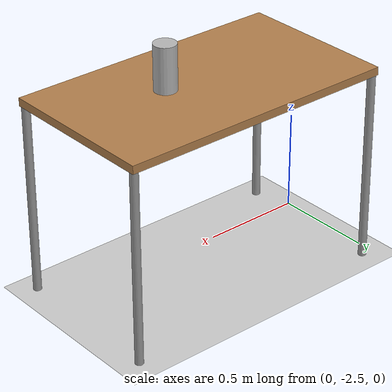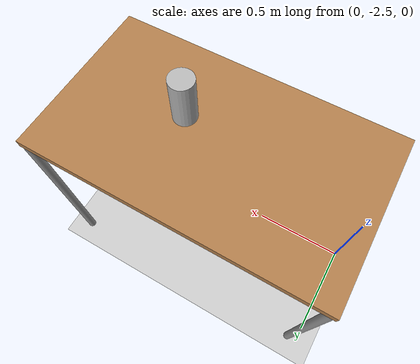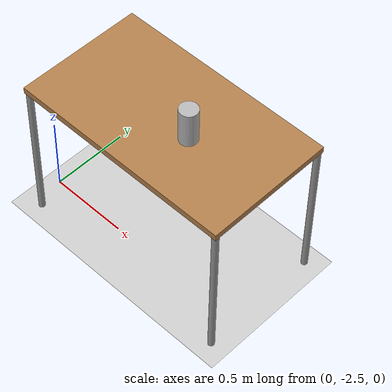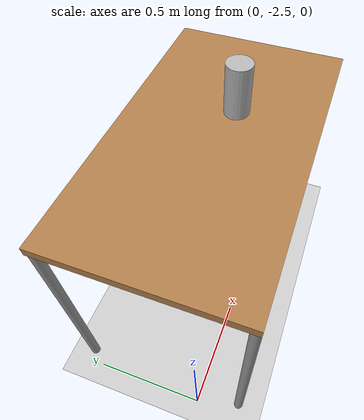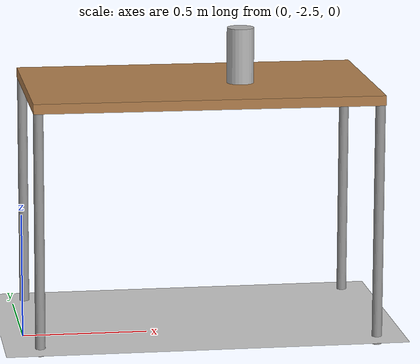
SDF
<sdf version="1.6">
 <world name="default">
  <physics name="default_physics" default="0" type="ode">
   <max_step_size>0.001</max_step_size>
   <real_time_factor>1</real_time_factor>
   <real_time_update_rate>1000</real_time_update_rate>
  </physics>
  <light name="sun" type="directional">
   <pose>0 0 10 0 -0 0</pose>
   <diffuse>0.8 0.8 0.8 1</diffuse>
   <specular>0.1 0.1 0.1 1</specular>
   <attenuation>
    <range>1000</range>
    <constant>0.9</constant>
    <linear>0.01</linear>
    <quadratic>0.001</quadratic>
   </attenuation>
   <direction>-0.5 0.5 -1</direction>
  </light>
  <model name="ground_plane">
   <static>1</static>
   <link name="link">
    <collision name="collision">
     <geometry><plane><normal>0 0 1</normal><size>100 100</size></plane></geometry>
     <surface><friction><ode><mu>100</mu><mu2>50</mu2></ode></friction></surface>
    </collision>
    <visual name="visual">
     <cast_shadows>0</cast_shadows>
     <geometry><plane><normal>0 0 1</normal><size>100 100</size></plane></geometry>
     <material>
      <script><uri>file://media/materials/scripts/gazebo.material</uri><name>Gazebo/Grey</name></script>
     </material>
    </visual>
   </link>
  </model>
  <gravity>0 0 -9.8</gravity>
  <magnetic_field>6e-06 2.3e-05 -4.2e-05</magnetic_field>
  <atmosphere type="adiabatic"/>
  <scene><ambient>0.4 0.4 0.4 1</ambient><background>0.7 0.7 0.7 1</background><shadows>1</shadows></scene>
  <spherical_coordinates>
   <surface_model>EARTH_WGS84</surface_model>
   <latitude_deg>0</latitude_deg>
   <longitude_deg>0</longitude_deg>
   <elevation>0</elevation>
   <heading_deg>0</heading_deg>
  </spherical_coordinates>
  <model name="table">
   <static>0</static>
   <link name="link">
    <collision name="surface">
     <pose>0 0 1 0 -0 0</pose>
     <geometry><box><size>1.5 0.8 0.03</size></box></geometry>
     <surface><friction><ode><mu>0.6</mu><mu2>0.6</mu2></ode></friction></surface>
    </collision>
    <visual name="visual1">
     <pose>0 0 1 0 -0 0</pose>
     <geometry><box><size>1.4 0.8 0.04</size></box></geometry>
     <material>
      <script><uri>file://media/materials/scripts/gazebo.material</uri><name>Gazebo/Wood</name></script>
     </material>
    </visual>
    <collision name="front_left_leg">
     <pose>0.68 0.38 0.5 0 -0 0</pose>
     <geometry><cylinder><radius>0.02</radius><length>1</length></cylinder></geometry>
    </collision>
    <visual name="front_left_leg">
     <pose>0.68 0.38 0.5 0 -0 0</pose>
     <geometry><cylinder><radius>0.02</radius><length>1</length></cylinder></geometry>
     <material>
      <script><uri>file://media/materials/scripts/gazebo.material</uri><name>Gazebo/Grey</name></script>
     </material>
    </visual>
    <collision name="front_right_leg">
     <pose>0.68 -0.38 0.5 0 -0 0</pose>
     <geometry><cylinder><radius>0.02</radius><length>1</length></cylinder></geometry>
    </collision>
    <visual name="front_right_leg">
     <pose>0.68 -0.38 0.5 0 -0 0</pose>
     <geometry><cylinder><radius>0.02</radius><length>1</length></cylinder></geometry>
     <material>
      <script><uri>file://media/materials/scripts/gazebo.material</uri><name>Gazebo/Grey</name></script>
     </material>
    </visual>
    <collision name="back_right_leg">
     <pose>-0.68 -0.38 0.5 0 -0 0</pose>
     <geometry><cylinder><radius>0.02</radius><length>1</length></cylinder></geometry>
    </collision>
    <visual name="back_right_leg">
     <pose>-0.68 -0.38 0.5 0 -0 0</pose>
     <geometry><cylinder><radius>0.02</radius><length>1</length></cylinder></geometry>
     <material>
      <script><uri>file://media/materials/scripts/gazebo.material</uri><name>Gazebo/Grey</name></script>
     </material>
    </visual>
    <collision name="back_left_leg">
     <pose>-0.68 0.38 0.5 0 -0 0</pose>
     <geometry><cylinder><radius>0.02</radius><length>1</length></cylinder></geometry>
    </collision>
    <visual name="back_left_leg">
     <pose>-0.68 0.38 0.5 0 -0 0</pose>
     <geometry><cylinder><radius>0.02</radius><length>1</length></cylinder></geometry>
     <material>
      <script><uri>file://media/materials/scripts/gazebo.material</uri><name>Gazebo/Grey</name></script>
     </material>
    </visual>
    <inertial>
     <inertia><ixx>1</ixx><ixy>0</ixy><ixz>0</ixz><iyy>1</iyy><iyz>0</iyz><izz>1</izz></inertia>
     <mass>1</mass>
    </inertial>
   </link>
   <pose>0.733521 -2.30684 -0.031428 0.002083 0.001999 -0.000517</pose>
  </model>
  <model name="beer">
   <link name="link">
    <pose>0 0 0.115 0 -0 0</pose>
    <inertial>
     <mass>0.39</mass>
     <inertia><ixx>0.00058</ixx><ixy>0</ixy><ixz>0</ixz><iyy>0.00058</iyy><iyz>0</iyz><izz>0.00019</izz></inertia>
    </inertial>
    <collision name="collision">
     <geometry><cylinder><radius>0.055</radius><length>0.23</length></cylinder></geometry>
    </collision>
    <visual name="visual">
     <geometry><cylinder><radius>0.055</radius><length>0.23</length></cylinder></geometry>
     <material>
      <script>
       <uri>model://beer/materials/scripts</uri>
       <uri>model://beer/materials/textures</uri>
       <name>Beer/Diffuse</name>
      </script>
     </material>
    </visual>
   </link>
   <pose>0.904827 -2.35333 0.983132 0.002289 0.002104 0.014872</pose>
  </model>
 </world>
</sdf>
